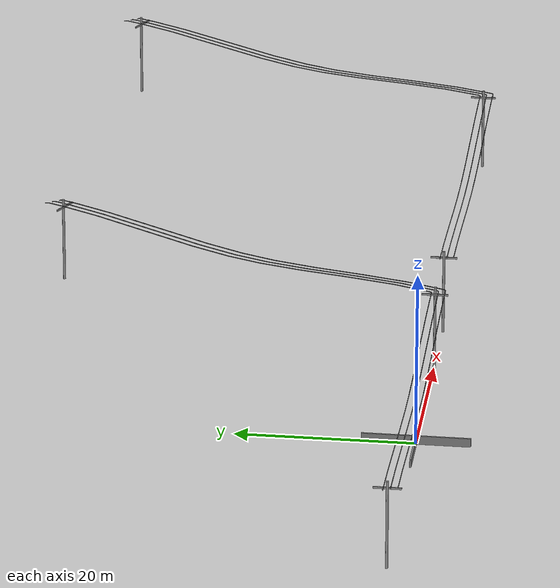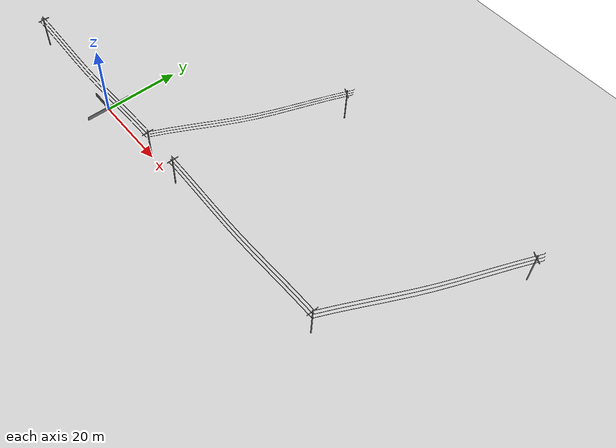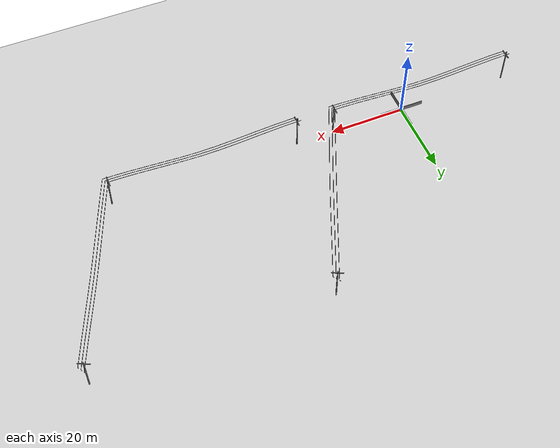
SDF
<?xml version="1.0" ?>
<sdf version="1.5">
  <world name="default">
    <include>
      <uri>model://sun</uri>
    </include>
    <include>
      <uri>model://ground_plane</uri>
    </include>

    <include>
      <uri>model://TL</uri>
      <name>tower1</name>
      <pose>30 0 0 0 0 0</pose>
    </include>

    <include>
      <uri>model://TL</uri>
      <name>tower2</name>
      <pose>-30 0 0 0 0 0</pose>
    </include>

    <!-- SLAM initialization structures -->
    <model name="wall_north">
      <pose>3 0 0.5 0 0 0</pose>
      <static>true</static>
      <link name="link">
        <collision name="collision">
          <geometry>
            <box><size>6 0.2 1</size></box>
          </geometry>
        </collision>
        <visual name="visual">
          <geometry>
            <box><size>6 0.2 1</size></box>
          </geometry>
          <material><ambient>0.5 0.5 0.5 1</ambient></material>
        </visual>
      </link>
    </model>
    <model name="wall_east">
      <pose>0 3 0.5 0 0 0</pose>
      <static>true</static>
      <link name="link">
        <collision name="collision">
          <geometry>
            <box><size>0.2 6 1</size></box>
          </geometry>
        </collision>
        <visual name="visual">
          <geometry>
            <box><size>0.2 6 1</size></box>
          </geometry>
          <material><ambient>0.5 0.5 0.5 1</ambient></material>
        </visual>
      </link>
    </model>
    <model name="wall_south">
      <pose>-3 0 0.5 0 0 0</pose>
      <static>true</static>
      <link name="link">
        <collision name="collision">
          <geometry>
            <box><size>6 0.2 1</size></box>
          </geometry>
        </collision>
        <visual name="visual">
          <geometry>
            <box><size>6 0.2 1</size></box>
          </geometry>
          <material><ambient>0.5 0.5 0.5 1</ambient></material>
        </visual>
      </link>
    </model>
    <model name="wall_west">
      <pose>0 -3 0.5 0 0 0</pose>
      <static>true</static>
      <link name="link">
        <collision name="collision">
          <geometry>
            <box><size>0.2 6 1</size></box>
          </geometry>
        </collision>
        <visual name="visual">
          <geometry>
            <box><size>0.2 6 1</size></box>
          </geometry>
          <material><ambient>0.5 0.5 0.5 1</ambient></material>
        </visual>
      </link>
    </model>

    <physics name='default_physics' default='0' type='ode'>
      <gravity>0 0 -9.8066</gravity>
      <ode>
        <solver>
          <type>quick</type>
          <iters>10</iters>
          <sor>1.3</sor>
        </solver>
        <constraints>
          <cfm>0</cfm>
          <erp>0.2</erp>
          <contact_max_correcting_vel>100</contact_max_correcting_vel>
          <contact_surface_layer>0.001</contact_surface_layer>
        </constraints>
      </ode>
      <max_step_size>0.004</max_step_size>
      <real_time_factor>1</real_time_factor>
      <real_time_update_rate>250</real_time_update_rate>
      <magnetic_field>6.0e-6 2.3e-5 -4.2e-5</magnetic_field>
    </physics>

  </world>
</sdf>

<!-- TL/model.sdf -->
<sdf version='1.6'>
  <model name='TL'>
    <static>true</static>
    <link name='base_link'>
      <pose frame=''>0 0 0 0 -0 0</pose>
      <inertial>
        <pose frame=''>40.9647 13.6761 6.69126 0 -0 0</pose>
        <mass>3933.3</mass>
        <inertia>
          <ixx>1.49087e+06</ixx>
          <ixy>-1.32744e+06</ixy>
          <ixz>-8733.41</ixz>
          <iyy>2.75396e+06</iyy>
          <iyz>10945.9</iyz>
          <izz>4.18172e+06</izz>
        </inertia>
      </inertial>
      <collision name='base_link_collision'>
        <pose frame=''>0 0 0 0 -0 0</pose>
        <geometry>
          <mesh>
            <scale>1 1 1</scale>
            <uri>model://TL/meshes/base_link.STL</uri>
          </mesh>
        </geometry>
      </collision>
      <collision name='base_link_fixed_joint_lump__barra1_collision_1'>
        <pose frame=''>0 0 0 0 -0 0</pose>
        <geometry>
          <mesh>
            <scale>1 1 1</scale>
            <uri>model://TL/meshes/barra1.STL</uri>
          </mesh>
        </geometry>
      </collision>
      <collision name='base_link_fixed_joint_lump__barra2_collision_2'>
        <pose frame=''>0 0 0 0 -0 0</pose>
        <geometry>
          <mesh>
            <scale>1 1 1</scale>
            <uri>model://TL/meshes/barra2.STL</uri>
          </mesh>
        </geometry>
      </collision>
      <collision name='base_link_fixed_joint_lump__barra3_collision_3'>
        <pose frame=''>0 0 0 0 -0 0</pose>
        <geometry>
          <mesh>
            <scale>1 1 1</scale>
            <uri>model://TL/meshes/barra3.STL</uri>
          </mesh>
        </geometry>
      </collision>
      <collision name='base_link_fixed_joint_lump__cabo1_collision_4'>
        <pose frame=''>0 0 0 0 -0 0</pose>
        <geometry>
          <mesh>
            <scale>1 1 1</scale>
            <uri>model://TL/meshes/cabo1.STL</uri>
          </mesh>
        </geometry>
      </collision>
      <collision name='base_link_fixed_joint_lump__cabo2_collision_5'>
        <pose frame=''>0 0 0 0 -0 0</pose>
        <geometry>
          <mesh>
            <scale>1 1 1</scale>
            <uri>model://TL/meshes/cabo2.STL</uri>
          </mesh>
        </geometry>
      </collision>
      <collision name='base_link_fixed_joint_lump__cabo3_collision_6'>
        <pose frame=''>0 0 0 0 -0 0</pose>
        <geometry>
          <mesh>
            <scale>1 1 1</scale>
            <uri>model://TL/meshes/cabo3.STL</uri>
          </mesh>
        </geometry>
      </collision>
      <collision name='base_link_fixed_joint_lump__cabo4_collision_7'>
        <pose frame=''>0 0 0 0 -0 0</pose>
        <geometry>
          <mesh>
            <scale>1 1 1</scale>
            <uri>model://TL/meshes/cabo4.STL</uri>
          </mesh>
        </geometry>
      </collision>
      <collision name='base_link_fixed_joint_lump__cabo5_collision_8'>
        <pose frame=''>0 0 0 0 -0 0</pose>
        <geometry>
          <mesh>
            <scale>1 1 1</scale>
            <uri>model://TL/meshes/cabo5.STL</uri>
          </mesh>
        </geometry>
      </collision>
      <collision name='base_link_fixed_joint_lump__cabo6_collision_9'>
        <pose frame=''>0 0 0 0 -0 0</pose>
        <geometry>
          <mesh>
            <scale>1 1 1</scale>
            <uri>model://TL/meshes/cabo6.STL</uri>
          </mesh>
        </geometry>
      </collision>
      <collision name='base_link_fixed_joint_lump__poste2_collision_10'>
        <pose frame=''>0 0 0 0 -0 0</pose>
        <geometry>
          <mesh>
            <scale>1 1 1</scale>
            <uri>model://TL/meshes/poste2.STL</uri>
          </mesh>
        </geometry>
      </collision>
      <collision name='base_link_fixed_joint_lump__poste3_collision_11'>
        <pose frame=''>0 0 0 0 -0 0</pose>
        <geometry>
          <mesh>
            <scale>1 1 1</scale>
            <uri>model://TL/meshes/poste3.STL</uri>
          </mesh>
        </geometry>
      </collision>
      <collision name='base_link_fixed_joint_lump__suporte1_collision_12'>
        <pose frame=''>0 0 0 0 -0 0</pose>
        <geometry>
          <mesh>
            <scale>1 1 1</scale>
            <uri>model://TL/meshes/suporte1.STL</uri>
          </mesh>
        </geometry>
      </collision>
      <collision name='base_link_fixed_joint_lump__suporte2_collision_13'>
        <pose frame=''>0 0 0 0 -0 0</pose>
        <geometry>
          <mesh>
            <scale>1 1 1</scale>
            <uri>model://TL/meshes/suporte2.STL</uri>
          </mesh>
        </geometry>
      </collision>
      <collision name='base_link_fixed_joint_lump__suporte3_collision_14'>
        <pose frame=''>0 0 0 0 -0 0</pose>
        <geometry>
          <mesh>
            <scale>1 1 1</scale>
            <uri>model://TL/meshes/suporte3.STL</uri>
          </mesh>
        </geometry>
      </collision>
      <collision name='base_link_fixed_joint_lump__suporte4_collision_15'>
        <pose frame=''>0 0 0 0 -0 0</pose>
        <geometry>
          <mesh>
            <scale>1 1 1</scale>
            <uri>model://TL/meshes/suporte4.STL</uri>
          </mesh>
        </geometry>
      </collision>
      <collision name='base_link_fixed_joint_lump__suporte5_collision_16'>
        <pose frame=''>0 0 0 0 -0 0</pose>
        <geometry>
          <mesh>
            <scale>1 1 1</scale>
            <uri>model://TL/meshes/suporte5.STL</uri>
          </mesh>
        </geometry>
      </collision>
      <collision name='base_link_fixed_joint_lump__suporte6_collision_17'>
        <pose frame=''>0 0 0 0 -0 0</pose>
        <geometry>
          <mesh>
            <scale>1 1 1</scale>
            <uri>model://TL/meshes/suporte6.STL</uri>
          </mesh>
        </geometry>
      </collision>
      <collision name='base_link_fixed_joint_lump__suporte7_collision_18'>
        <pose frame=''>0 0 0 0 -0 0</pose>
        <geometry>
          <mesh>
            <scale>1 1 1</scale>
            <uri>model://TL/meshes/suporte7.STL</uri>
          </mesh>
        </geometry>
      </collision>
      <collision name='base_link_fixed_joint_lump__suporte8_collision_19'>
        <pose frame=''>0 0 0 0 -0 0</pose>
        <geometry>
          <mesh>
            <scale>1 1 1</scale>
            <uri>model://TL/meshes/suporte8.STL</uri>
          </mesh>
        </geometry>
      </collision>
      <collision name='base_link_fixed_joint_lump__suporte9_collision_20'>
        <pose frame=''>0 0 0 0 -0 0</pose>
        <geometry>
          <mesh>
            <scale>1 1 1</scale>
            <uri>model://TL/meshes/suporte9.STL</uri>
          </mesh>
        </geometry>
      </collision>
      <visual name='base_link_visual'>
        <pose frame=''>0 0 0 0 -0 0</pose>
        <geometry>
          <mesh>
            <scale>1 1 1</scale>
            <uri>model://TL/meshes/base_link.STL</uri>
          </mesh>
        </geometry>
        <material>
          <script>
            <uri>file://media/materials/scripts/gazebo.material</uri>
            <name>Gazebo/Grey</name>
          </script>
        </material>
      </visual>
      <visual name='base_link_fixed_joint_lump__barra1_visual_1'>
        <pose frame=''>0 0 0 0 -0 0</pose>
        <geometry>
          <mesh>
            <scale>1 1 1</scale>
            <uri>model://TL/meshes/barra1.STL</uri>
          </mesh>
        </geometry>
        <material>
          <script>
            <uri>file://media/materials/scripts/gazebo.material</uri>
            <name>Gazebo/Grey</name>
          </script>
        </material>
      </visual>
      <visual name='base_link_fixed_joint_lump__barra2_visual_2'>
        <pose frame=''>0 0 0 0 -0 0</pose>
        <geometry>
          <mesh>
            <scale>1 1 1</scale>
            <uri>model://TL/meshes/barra2.STL</uri>
          </mesh>
        </geometry>
        <material>
          <script>
            <uri>file://media/materials/scripts/gazebo.material</uri>
            <name>Gazebo/Grey</name>
          </script>
        </material>
      </visual>
      <visual name='base_link_fixed_joint_lump__barra3_visual_3'>
        <pose frame=''>0 0 0 0 -0 0</pose>
        <geometry>
          <mesh>
            <scale>1 1 1</scale>
            <uri>model://TL/meshes/barra3.STL</uri>
          </mesh>
        </geometry>
        <material>
          <script>
            <uri>file://media/materials/scripts/gazebo.material</uri>
            <name>Gazebo/Grey</name>
          </script>
        </material>
      </visual>
      <visual name='base_link_fixed_joint_lump__cabo1_visual_4'>
        <pose frame=''>0 0 0 0 -0 0</pose>
        <geometry>
          <mesh>
            <scale>1 1 1</scale>
            <uri>model://TL/meshes/cabo1.STL</uri>
          </mesh>
        </geometry>
        <material>
          <script>
            <uri>file://media/materials/scripts/gazebo.material</uri>
            <name>Gazebo/Black</name>
          </script>
        </material>
      </visual>
      <visual name='base_link_fixed_joint_lump__cabo2_visual_5'>
        <pose frame=''>0 0 0 0 -0 0</pose>
        <geometry>
          <mesh>
            <scale>1 1 1</scale>
            <uri>model://TL/meshes/cabo2.STL</uri>
          </mesh>
        </geometry>
        <material>
          <script>
            <uri>file://media/materials/scripts/gazebo.material</uri>
            <name>Gazebo/Black</name>
          </script>
        </material>
      </visual>
      <visual name='base_link_fixed_joint_lump__cabo3_visual_6'>
        <pose frame=''>0 0 0 0 -0 0</pose>
        <geometry>
          <mesh>
            <scale>1 1 1</scale>
            <uri>model://TL/meshes/cabo3.STL</uri>
          </mesh>
        </geometry>
        <material>
          <script>
            <uri>file://media/materials/scripts/gazebo.material</uri>
            <name>Gazebo/Black</name>
          </script>
        </material>
      </visual>
      <visual name='base_link_fixed_joint_lump__cabo4_visual_7'>
        <pose frame=''>0 0 0 0 -0 0</pose>
        <geometry>
          <mesh>
            <scale>1 1 1</scale>
            <uri>model://TL/meshes/cabo4.STL</uri>
          </mesh>
        </geometry>
        <material>
          <script>
            <uri>file://media/materials/scripts/gazebo.material</uri>
            <name>Gazebo/Black</name>
          </script>
        </material>
      </visual>
      <visual name='base_link_fixed_joint_lump__cabo5_visual_8'>
        <pose frame=''>0 0 0 0 -0 0</pose>
        <geometry>
          <mesh>
            <scale>1 1 1</scale>
            <uri>model://TL/meshes/cabo5.STL</uri>
          </mesh>
        </geometry>
        <material>
          <script>
            <uri>file://media/materials/scripts/gazebo.material</uri>
            <name>Gazebo/Black</name>
          </script>
        </material>
      </visual>
      <visual name='base_link_fixed_joint_lump__cabo6_visual_9'>
        <pose frame=''>0 0 0 0 -0 0</pose>
        <geometry>
          <mesh>
            <scale>1 1 1</scale>
            <uri>model://TL/meshes/cabo6.STL</uri>
          </mesh>
        </geometry>
        <material>
          <script>
            <uri>file://media/materials/scripts/gazebo.material</uri>
            <name>Gazebo/Black</name>
          </script>
        </material>
      </visual>
      <visual name='base_link_fixed_joint_lump__poste2_visual_10'>
        <pose frame=''>0 0 0 0 -0 0</pose>
        <geometry>
          <mesh>
            <scale>1 1 1</scale>
            <uri>model://TL/meshes/poste2.STL</uri>
          </mesh>
        </geometry>
        <material>
          <script>
            <uri>file://media/materials/scripts/gazebo.material</uri>
            <name>Gazebo/Grey</name>
          </script>
        </material>
      </visual>
      <visual name='base_link_fixed_joint_lump__poste3_visual_11'>
        <pose frame=''>0 0 0 0 -0 0</pose>
        <geometry>
          <mesh>
            <scale>1 1 1</scale>
            <uri>model://TL/meshes/poste3.STL</uri>
          </mesh>
        </geometry>
        <material>
          <script>
            <uri>file://media/materials/scripts/gazebo.material</uri>
            <name>Gazebo/Grey</name>
          </script>
        </material>
      </visual>
      <visual name='base_link_fixed_joint_lump__suporte1_visual_12'>
        <pose frame=''>0 0 0 0 -0 0</pose>
        <geometry>
          <mesh>
            <scale>1 1 1</scale>
            <uri>model://TL/meshes/suporte1.STL</uri>
          </mesh>
        </geometry>
      </visual>
      <visual name='base_link_fixed_joint_lump__suporte2_visual_13'>
        <pose frame=''>0 0 0 0 -0 0</pose>
        <geometry>
          <mesh>
            <scale>1 1 1</scale>
            <uri>model://TL/meshes/suporte2.STL</uri>
          </mesh>
        </geometry>
      </visual>
      <visual name='base_link_fixed_joint_lump__suporte3_visual_14'>
        <pose frame=''>0 0 0 0 -0 0</pose>
        <geometry>
          <mesh>
            <scale>1 1 1</scale>
            <uri>model://TL/meshes/suporte3.STL</uri>
          </mesh>
        </geometry>
      </visual>
      <visual name='base_link_fixed_joint_lump__suporte4_visual_15'>
        <pose frame=''>0 0 0 0 -0 0</pose>
        <geometry>
          <mesh>
            <scale>1 1 1</scale>
            <uri>model://TL/meshes/suporte4.STL</uri>
          </mesh>
        </geometry>
      </visual>
      <visual name='base_link_fixed_joint_lump__suporte5_visual_16'>
        <pose frame=''>0 0 0 0 -0 0</pose>
        <geometry>
          <mesh>
            <scale>1 1 1</scale>
            <uri>model://TL/meshes/suporte5.STL</uri>
          </mesh>
        </geometry>
      </visual>
      <visual name='base_link_fixed_joint_lump__suporte6_visual_17'>
        <pose frame=''>0 0 0 0 -0 0</pose>
        <geometry>
          <mesh>
            <scale>1 1 1</scale>
            <uri>model://TL/meshes/suporte6.STL</uri>
          </mesh>
        </geometry>
      </visual>
      <visual name='base_link_fixed_joint_lump__suporte7_visual_18'>
        <pose frame=''>0 0 0 0 -0 0</pose>
        <geometry>
          <mesh>
            <scale>1 1 1</scale>
            <uri>model://TL/meshes/suporte7.STL</uri>
          </mesh>
        </geometry>
      </visual>
      <visual name='base_link_fixed_joint_lump__suporte8_visual_19'>
        <pose frame=''>0 0 0 0 -0 0</pose>
        <geometry>
          <mesh>
            <scale>1 1 1</scale>
            <uri>model://TL/meshes/suporte8.STL</uri>
          </mesh>
        </geometry>
      </visual>
      <visual name='base_link_fixed_joint_lump__suporte9_visual_20'>
        <pose frame=''>0 0 0 0 -0 0</pose>
        <geometry>
          <mesh>
            <scale>1 1 1</scale>
            <uri>model://TL/meshes/suporte9.STL</uri>
          </mesh>
        </geometry>
      </visual>
    </link>
  </model>
</sdf>
